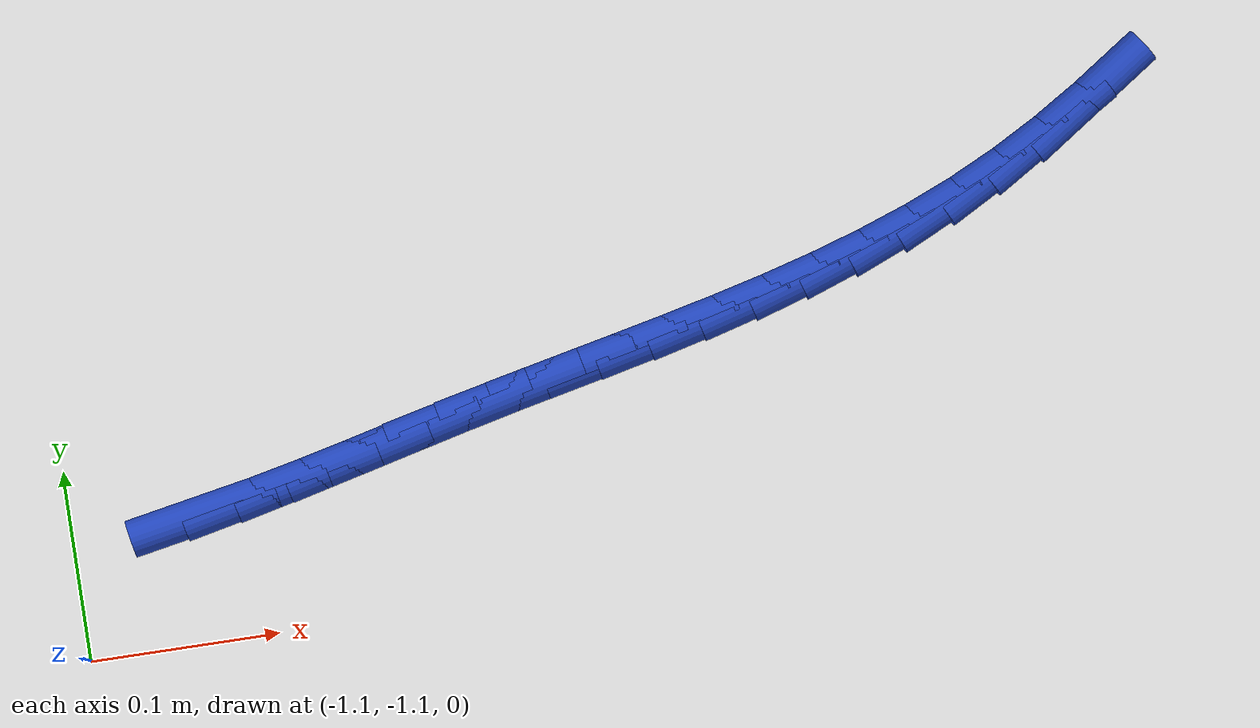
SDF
<sdf version="1.6">
 <world name="default">
  <model name="ground_plane">
   <static>1</static>
   <link name="link">
    <collision name="collision">
     <geometry><plane><normal>0 0 1</normal><size>100 100</size></plane></geometry>
     <surface><friction><ode><mu>100</mu><mu2>50</mu2></ode></friction></surface>
    </collision>
    <visual name="visual">
     <cast_shadows>0</cast_shadows>
     <geometry><plane><normal>0 0 1</normal><size>100 100</size></plane></geometry>
     <material>
      <script><uri>file://media/materials/scripts/gazebo.material</uri><name>Gazebo/WhiteGlow</name></script>
     </material>
    </visual>
   </link>
  </model>
  <model name="line">
   <link name="link_174">
    <pose>-1.0302662256100894 -1.0329596028703196 0.01 0 1.57 0.1856117936828208</pose>
    <collision name="collision">
     <geometry><cylinder><radius>0.01</radius><length>0.08</length></cylinder></geometry>
    </collision>
    <visual name="visual">
     <material>
      <script><name>Gazebo/Blue</name><uri>file://media/materials/scripts/gazebo.material</uri></script>
     </material>
     <geometry><cylinder><radius>0.01</radius><length>0.08</length></cylinder></geometry>
    </visual>
   </link>
   <link name="link_175">
    <pose>-1.002262686751745 -1.0277012906449166 0.01 0 1.57 0.21386787513429645</pose>
    <collision name="collision">
     <geometry><cylinder><radius>0.01</radius><length>0.08</length></cylinder></geometry>
    </collision>
    <visual name="visual">
     <material>
      <script><name>Gazebo/Blue</name><uri>file://media/materials/scripts/gazebo.material</uri></script>
     </material>
     <geometry><cylinder><radius>0.01</radius><length>0.08</length></cylinder></geometry>
    </visual>
   </link>
   <link name="link_176">
    <pose>-0.97425178415925 -1.0216176197288946 0.01 0 1.57 0.23210620946830907</pose>
    <collision name="collision">
     <geometry><cylinder><radius>0.01</radius><length>0.08</length></cylinder></geometry>
    </collision>
    <visual name="visual">
     <material>
      <script><name>Gazebo/Blue</name><uri>file://media/materials/scripts/gazebo.material</uri></script>
     </material>
     <geometry><cylinder><radius>0.01</radius><length>0.08</length></cylinder></geometry>
    </visual>
   </link>
   <link name="link_177">
    <pose>-0.9462106071790267 -1.0149896349582186 0.01 0 1.57 0.24054042090526714</pose>
    <collision name="collision">
     <geometry><cylinder><radius>0.01</radius><length>0.08</length></cylinder></geometry>
    </collision>
    <visual name="visual">
     <material>
      <script><name>Gazebo/Blue</name><uri>file://media/materials/scripts/gazebo.material</uri></script>
     </material>
     <geometry><cylinder><radius>0.01</radius><length>0.08</length></cylinder></geometry>
    </visual>
   </link>
   <link name="link_178">
    <pose>-0.9181162451574998 -1.0080983811688553 0.01 0 1.57 0.2393198712823348</pose>
    <collision name="collision">
     <geometry><cylinder><radius>0.01</radius><length>0.08</length></cylinder></geometry>
    </collision>
    <visual name="visual">
     <material>
      <script><name>Gazebo/Blue</name><uri>file://media/materials/scripts/gazebo.material</uri></script>
     </material>
     <geometry><cylinder><radius>0.01</radius><length>0.08</length></cylinder></geometry>
    </visual>
   </link>
   <link name="link_179">
    <pose>-0.8899457874410921 -1.0012249031967708 0.01 0 1.57 0.22900107658659666</pose>
    <collision name="collision">
     <geometry><cylinder><radius>0.01</radius><length>0.08</length></cylinder></geometry>
    </collision>
    <visual name="visual">
     <material>
      <script><name>Gazebo/Blue</name><uri>file://media/materials/scripts/gazebo.material</uri></script>
     </material>
     <geometry><cylinder><radius>0.01</radius><length>0.08</length></cylinder></geometry>
    </visual>
   </link>
   <link name="link_180">
    <pose>-0.8616793907353999 -0.9946362910249046 0.01 0 1.57 0.21818180594663317</pose>
    <collision name="collision">
     <geometry><cylinder><radius>0.01</radius><length>0.08</length></cylinder></geometry>
    </collision>
    <visual name="visual">
     <material>
      <script><name>Gazebo/Blue</name><uri>file://media/materials/scripts/gazebo.material</uri></script>
     </material>
     <geometry><cylinder><radius>0.01</radius><length>0.08</length></cylinder></geometry>
    </visual>
   </link>
   <link name="link_181">
    <pose>-0.8333508645620433 -0.9883555428555308 0.01 0 1.57 0.21416331722263485</pose>
    <collision name="collision">
     <geometry><cylinder><radius>0.01</radius><length>0.08</length></cylinder></geometry>
    </collision>
    <visual name="visual">
     <material>
      <script><name>Gazebo/Blue</name><uri>file://media/materials/scripts/gazebo.material</uri></script>
     </material>
     <geometry><cylinder><radius>0.01</radius><length>0.08</length></cylinder></geometry>
    </visual>
   </link>
   <link name="link_182">
    <pose>-0.8050396855883296 -0.9821978956635553 0.01 0 1.57 0.21719599645446233</pose>
    <collision name="collision">
     <geometry><cylinder><radius>0.01</radius><length>0.08</length></cylinder></geometry>
    </collision>
    <visual name="visual">
     <material>
      <script><name>Gazebo/Blue</name><uri>file://media/materials/scripts/gazebo.material</uri></script>
     </material>
     <geometry><cylinder><radius>0.01</radius><length>0.08</length></cylinder></geometry>
    </visual>
   </link>
   <link name="link_183">
    <pose>-0.776826787692677 -0.9759719568882711 0.01 0 1.57 0.2273512106831745</pose>
    <collision name="collision">
     <geometry><cylinder><radius>0.01</radius><length>0.08</length></cylinder></geometry>
    </collision>
    <visual name="visual">
     <material>
      <script><name>Gazebo/Blue</name><uri>file://media/materials/scripts/gazebo.material</uri></script>
     </material>
     <geometry><cylinder><radius>0.01</radius><length>0.08</length></cylinder></geometry>
    </visual>
   </link>
   <link name="link_184">
    <pose>-0.7487931047535025 -0.9694863339689715 0.01 0 1.57 0.24475214937307052</pose>
    <collision name="collision">
     <geometry><cylinder><radius>0.01</radius><length>0.08</length></cylinder></geometry>
    </collision>
    <visual name="visual">
     <material>
      <script><name>Gazebo/Blue</name><uri>file://media/materials/scripts/gazebo.material</uri></script>
     </material>
     <geometry><cylinder><radius>0.01</radius><length>0.08</length></cylinder></geometry>
    </visual>
   </link>
   <link name="link_185">
    <pose>-0.7210195706492248 -0.9625496343449502 0.01 0 1.57 0.26956027097758184</pose>
    <collision name="collision">
     <geometry><cylinder><radius>0.01</radius><length>0.08</length></cylinder></geometry>
    </collision>
    <visual name="visual">
     <material>
      <script><name>Gazebo/Blue</name><uri>file://media/materials/scripts/gazebo.material</uri></script>
     </material>
     <geometry><cylinder><radius>0.01</radius><length>0.08</length></cylinder></geometry>
    </visual>
   </link>
   <link name="link_186">
    <pose>-0.6935871192582619 -0.9549704654555004 0.01 0 1.57 0.3019492876590389</pose>
    <collision name="collision">
     <geometry><cylinder><radius>0.01</radius><length>0.08</length></cylinder></geometry>
    </collision>
    <visual name="visual">
     <material>
      <script><name>Gazebo/Blue</name><uri>file://media/materials/scripts/gazebo.material</uri></script>
     </material>
     <geometry><cylinder><radius>0.01</radius><length>0.08</length></cylinder></geometry>
    </visual>
   </link>
   <link name="link_187">
    <pose>-0.6665766844590311 -0.9465574347399149 0.01 0 1.57 0.3420642614125866</pose>
    <collision name="collision">
     <geometry><cylinder><radius>0.01</radius><length>0.08</length></cylinder></geometry>
    </collision>
    <visual name="visual">
     <material>
      <script><name>Gazebo/Blue</name><uri>file://media/materials/scripts/gazebo.material</uri></script>
     </material>
     <geometry><cylinder><radius>0.01</radius><length>0.08</length></cylinder></geometry>
    </visual>
   </link>
   <link name="link_188">
    <pose>-0.6400692001299492 -0.9371191496374874 0.01 0 1.57 0.38996399275939186</pose>
    <collision name="collision">
     <geometry><cylinder><radius>0.01</radius><length>0.08</length></cylinder></geometry>
    </collision>
    <visual name="visual">
     <material>
      <script><name>Gazebo/Blue</name><uri>file://media/materials/scripts/gazebo.material</uri></script>
     </material>
     <geometry><cylinder><radius>0.01</radius><length>0.08</length></cylinder></geometry>
    </visual>
   </link>
   <link name="link_189">
    <pose>-0.6141456001494355 -0.9264642175875109 0.01 0 1.57 0.4454564737244295</pose>
    <collision name="collision">
     <geometry><cylinder><radius>0.01</radius><length>0.08</length></cylinder></geometry>
    </collision>
    <visual name="visual">
     <material>
      <script><name>Gazebo/Blue</name><uri>file://media/materials/scripts/gazebo.material</uri></script>
     </material>
     <geometry><cylinder><radius>0.01</radius><length>0.08</length></cylinder></geometry>
    </visual>
   </link>
   <link name="link_190">
    <pose>-0.5888857873235972 -0.9144035770135722 0.01 0 1.57 0.502841546231857</pose>
    <collision name="collision">
     <geometry><cylinder><radius>0.01</radius><length>0.08</length></cylinder></geometry>
    </collision>
    <visual name="visual">
     <material>
      <script><name>Gazebo/Blue</name><uri>file://media/materials/scripts/gazebo.material</uri></script>
     </material>
     <geometry><cylinder><radius>0.01</radius><length>0.08</length></cylinder></geometry>
    </visual>
   </link>
   <link name="link_191">
    <pose>-0.5643086141607722 -0.900886185063832 0.01 0 1.57 0.553517920080751</pose>
    <collision name="collision">
     <geometry><cylinder><radius>0.01</radius><length>0.08</length></cylinder></geometry>
    </collision>
    <visual name="visual">
     <material>
      <script><name>Gazebo/Blue</name><uri>file://media/materials/scripts/gazebo.material</uri></script>
     </material>
     <geometry><cylinder><radius>0.01</radius><length>0.08</length></cylinder></geometry>
    </visual>
   </link>
   <link name="link_192">
    <pose>-0.5403387703367079 -0.8860738763748683 0.01 0 1.57 0.5967101271407165</pose>
    <collision name="collision">
     <geometry><cylinder><radius>0.01</radius><length>0.08</length></cylinder></geometry>
    </collision>
    <visual name="visual">
     <material>
      <script><name>Gazebo/Blue</name><uri>file://media/materials/scripts/gazebo.material</uri></script>
     </material>
     <geometry><cylinder><radius>0.01</radius><length>0.08</length></cylinder></geometry>
    </visual>
   </link>
  </model>
 </world>
</sdf>
